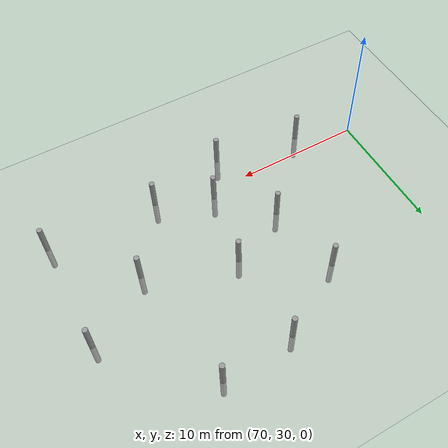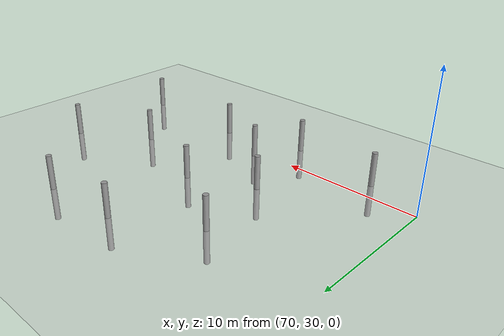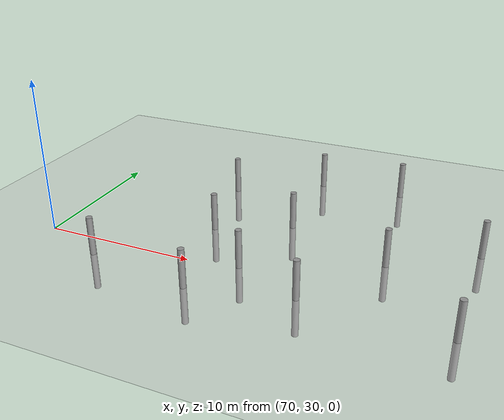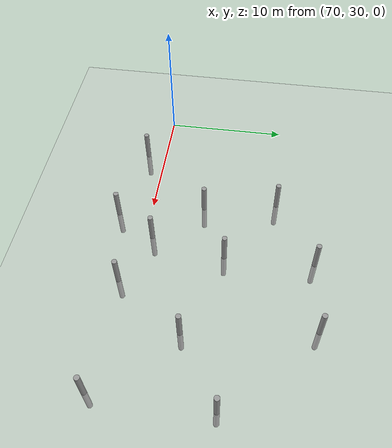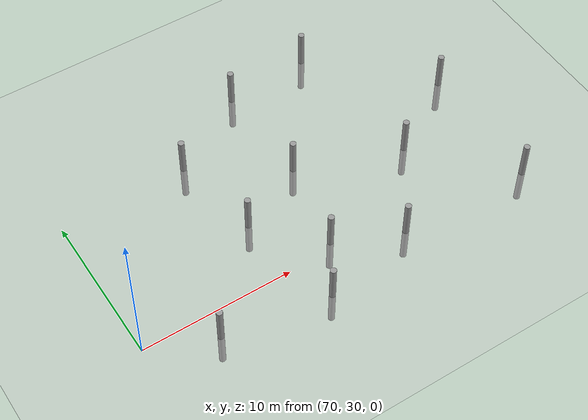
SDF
<sdf version="1.6">
 <world name="default">
  <model name="ground_plane">
   <static>1</static>
   <link name="link">
    <collision name="collision">
     <geometry><plane><normal>0 0 1</normal><size>100 100</size></plane></geometry>
     <surface><friction><ode><mu>100</mu><mu2>50</mu2></ode></friction></surface>
    </collision>
    <visual name="visual">
     <cast_shadows>0</cast_shadows>
     <geometry><plane><normal>0 0 1</normal><size>100 100</size></plane></geometry>
     <material>
      <script><uri>file://media/materials/scripts/gazebo.material</uri><name>Gazebo/Grey</name></script>
     </material>
    </visual>
   </link>
  </model>
  <model name="empty_pillars_3">
   <link name="link">
    <inertial>
     <mass>1</mass>
     <inertia><ixx>0.145833</ixx><ixy>0</ixy><ixz>0</ixz><iyy>0.145833</iyy><iyz>0</iyz><izz>0.125</izz></inertia>
    </inertial>
    <visual name="visual">
     <geometry><cylinder><radius>0.2</radius><length>5</length></cylinder></geometry>
     <material>
      <script><name>Gazebo/Grey</name><uri>file://media/materials/scripts/gazebo.material</uri></script>
      <shader type="vertex"><normal_map>__default__</normal_map></shader>
      <ambient>0.3 0.3 0.3 1</ambient>
      <diffuse>0.7 0.7 0.7 1</diffuse>
      <specular>0.01 0.01 0.01 1</specular>
      <emissive>0 0 0 1</emissive>
     </material>
    </visual>
    <collision name="collision">
     <geometry><cylinder><radius>0.05</radius><length>5</length></cylinder></geometry>
     <surface>
      <friction>
       <ode><mu>1</mu><mu2>1</mu2><fdir1>0 0 0</fdir1><slip1>0</slip1><slip2>0</slip2></ode>
       <torsional>
        <coefficient>1</coefficient>
        <patch_radius>0</patch_radius>
        <surface_radius>0</surface_radius>
        <use_patch_radius>1</use_patch_radius>
        <ode><slip>0</slip></ode>
       </torsional>
      </friction>
      <bounce><restitution_coefficient>0</restitution_coefficient><threshold>1e+06</threshold></bounce>
      <contact>
       <collide_without_contact>0</collide_without_contact>
       <collide_without_contact_bitmask>1</collide_without_contact_bitmask>
       <collide_bitmask>1</collide_bitmask>
       <ode>
        <soft_cfm>0</soft_cfm>
        <soft_erp>0.2</soft_erp>
        <kp>1e+13</kp>
        <kd>1</kd>
        <max_vel>0.01</max_vel>
        <min_depth>0</min_depth>
       </ode>
       <bullet>
        <split_impulse>1</split_impulse>
        <split_impulse_penetration_threshold>-0.01</split_impulse_penetration_threshold>
        <soft_cfm>0</soft_cfm>
        <soft_erp>0.2</soft_erp>
        <kp>1e+13</kp>
        <kd>1</kd>
       </bullet>
      </contact>
     </surface>
    </collision>
   </link>
   <model name="empty_pillar_clone_1">
    <link name="link">
     <inertial>
      <mass>1</mass>
      <inertia><ixx>0.145833</ixx><ixy>0</ixy><ixz>0</ixz><iyy>0.145833</iyy><iyz>0</iyz><izz>0.125</izz></inertia>
     </inertial>
     <visual name="visual">
      <geometry><cylinder><radius>0.2</radius><length>5</length></cylinder></geometry>
      <material>
       <script><name>Gazebo/Grey</name><uri>file://media/materials/scripts/gazebo.material</uri></script>
       <shader type="vertex"><normal_map>__default__</normal_map></shader>
       <ambient>0.3 0.3 0.3 1</ambient>
       <diffuse>0.7 0.7 0.7 1</diffuse>
       <specular>0.01 0.01 0.01 1</specular>
       <emissive>0 0 0 1</emissive>
      </material>
     </visual>
     <collision name="collision">
      <geometry><cylinder><radius>0.05</radius><length>5</length></cylinder></geometry>
      <surface>
       <friction>
        <ode><mu>1</mu><mu2>1</mu2><fdir1>0 0 0</fdir1><slip1>0</slip1><slip2>0</slip2></ode>
        <torsional>
         <coefficient>1</coefficient>
         <patch_radius>0</patch_radius>
         <surface_radius>0</surface_radius>
         <use_patch_radius>1</use_patch_radius>
         <ode><slip>0</slip></ode>
        </torsional>
       </friction>
       <bounce><restitution_coefficient>0</restitution_coefficient><threshold>1e+06</threshold></bounce>
       <contact>
        <collide_without_contact>0</collide_without_contact>
        <collide_without_contact_bitmask>1</collide_without_contact_bitmask>
        <collide_bitmask>1</collide_bitmask>
        <ode>
         <soft_cfm>0</soft_cfm>
         <soft_erp>0.2</soft_erp>
         <kp>1e+13</kp>
         <kd>1</kd>
         <max_vel>0.01</max_vel>
         <min_depth>0</min_depth>
        </ode>
        <bullet>
         <split_impulse>1</split_impulse>
         <split_impulse_penetration_threshold>-0.01</split_impulse_penetration_threshold>
         <soft_cfm>0</soft_cfm>
         <soft_erp>0.2</soft_erp>
         <kp>1e+13</kp>
         <kd>1</kd>
        </bullet>
       </contact>
      </surface>
     </collision>
    </link>
    <static>0</static>
    <pose>8.92248 2.14838 0 0 -0 0</pose>
   </model>
   <model name="empty_pillar_clone_2">
    <link name="link">
     <inertial>
      <mass>1</mass>
      <inertia><ixx>0.145833</ixx><ixy>0</ixy><ixz>0</ixz><iyy>0.145833</iyy><iyz>0</iyz><izz>0.125</izz></inertia>
     </inertial>
     <visual name="visual">
      <geometry><cylinder><radius>0.2</radius><length>5</length></cylinder></geometry>
      <material>
       <script><name>Gazebo/Grey</name><uri>file://media/materials/scripts/gazebo.material</uri></script>
       <shader type="vertex"><normal_map>__default__</normal_map></shader>
       <ambient>0.3 0.3 0.3 1</ambient>
       <diffuse>0.7 0.7 0.7 1</diffuse>
       <specular>0.01 0.01 0.01 1</specular>
       <emissive>0 0 0 1</emissive>
      </material>
     </visual>
     <collision name="collision">
      <geometry><cylinder><radius>0.05</radius><length>5</length></cylinder></geometry>
      <surface>
       <friction>
        <ode><mu>1</mu><mu2>1</mu2><fdir1>0 0 0</fdir1><slip1>0</slip1><slip2>0</slip2></ode>
        <torsional>
         <coefficient>1</coefficient>
         <patch_radius>0</patch_radius>
         <surface_radius>0</surface_radius>
         <use_patch_radius>1</use_patch_radius>
         <ode><slip>0</slip></ode>
        </torsional>
       </friction>
       <bounce><restitution_coefficient>0</restitution_coefficient><threshold>1e+06</threshold></bounce>
       <contact>
        <collide_without_contact>0</collide_without_contact>
        <collide_without_contact_bitmask>1</collide_without_contact_bitmask>
        <collide_bitmask>1</collide_bitmask>
        <ode>
         <soft_cfm>0</soft_cfm>
         <soft_erp>0.2</soft_erp>
         <kp>1e+13</kp>
         <kd>1</kd>
         <max_vel>0.01</max_vel>
         <min_depth>0</min_depth>
        </ode>
        <bullet>
         <split_impulse>1</split_impulse>
         <split_impulse_penetration_threshold>-0.01</split_impulse_penetration_threshold>
         <soft_cfm>0</soft_cfm>
         <soft_erp>0.2</soft_erp>
         <kp>1e+13</kp>
         <kd>1</kd>
        </bullet>
       </contact>
      </surface>
     </collision>
    </link>
    <static>0</static>
    <pose>6.92427 -1.06221 0 0 -0 0</pose>
   </model>
   <model name="empty_pillar_clone_27">
    <link name="link">
     <inertial>
      <mass>1</mass>
      <inertia><ixx>0.145833</ixx><ixy>0</ixy><ixz>0</ixz><iyy>0.145833</iyy><iyz>0</iyz><izz>0.125</izz></inertia>
     </inertial>
     <visual name="visual">
      <geometry><cylinder><radius>0.2</radius><length>5</length></cylinder></geometry>
      <material>
       <script><name>Gazebo/Grey</name><uri>file://media/materials/scripts/gazebo.material</uri></script>
       <shader type="vertex"><normal_map>__default__</normal_map></shader>
       <ambient>0.3 0.3 0.3 1</ambient>
       <diffuse>0.7 0.7 0.7 1</diffuse>
       <specular>0.01 0.01 0.01 1</specular>
       <emissive>0 0 0 1</emissive>
      </material>
     </visual>
     <collision name="collision">
      <geometry><cylinder><radius>0.05</radius><length>5</length></cylinder></geometry>
      <surface>
       <friction>
        <ode><mu>1</mu><mu2>1</mu2><fdir1>0 0 0</fdir1><slip1>0</slip1><slip2>0</slip2></ode>
        <torsional>
         <coefficient>1</coefficient>
         <patch_radius>0</patch_radius>
         <surface_radius>0</surface_radius>
         <use_patch_radius>1</use_patch_radius>
         <ode><slip>0</slip></ode>
        </torsional>
       </friction>
       <bounce><restitution_coefficient>0</restitution_coefficient><threshold>1e+06</threshold></bounce>
       <contact>
        <collide_without_contact>0</collide_without_contact>
        <collide_without_contact_bitmask>1</collide_without_contact_bitmask>
        <collide_bitmask>1</collide_bitmask>
        <ode>
         <soft_cfm>0</soft_cfm>
         <soft_erp>0.2</soft_erp>
         <kp>1e+13</kp>
         <kd>1</kd>
         <max_vel>0.01</max_vel>
         <min_depth>0</min_depth>
        </ode>
        <bullet>
         <split_impulse>1</split_impulse>
         <split_impulse_penetration_threshold>-0.01</split_impulse_penetration_threshold>
         <soft_cfm>0</soft_cfm>
         <soft_erp>0.2</soft_erp>
         <kp>1e+13</kp>
         <kd>1</kd>
        </bullet>
       </contact>
      </surface>
     </collision>
    </link>
    <static>0</static>
    <pose>4.32163 11.823 0 0 -0 0</pose>
   </model>
   <model name="empty_pillar_clone_28">
    <link name="link">
     <inertial>
      <mass>1</mass>
      <inertia><ixx>0.145833</ixx><ixy>0</ixy><ixz>0</ixz><iyy>0.145833</iyy><iyz>0</iyz><izz>0.125</izz></inertia>
     </inertial>
     <visual name="visual">
      <geometry><cylinder><radius>0.2</radius><length>5</length></cylinder></geometry>
      <material>
       <script><name>Gazebo/Grey</name><uri>file://media/materials/scripts/gazebo.material</uri></script>
       <shader type="vertex"><normal_map>__default__</normal_map></shader>
       <ambient>0.3 0.3 0.3 1</ambient>
       <diffuse>0.7 0.7 0.7 1</diffuse>
       <specular>0.01 0.01 0.01 1</specular>
       <emissive>0 0 0 1</emissive>
      </material>
     </visual>
     <collision name="collision">
      <geometry><cylinder><radius>0.05</radius><length>5</length></cylinder></geometry>
      <surface>
       <friction>
        <ode><mu>1</mu><mu2>1</mu2><fdir1>0 0 0</fdir1><slip1>0</slip1><slip2>0</slip2></ode>
        <torsional>
         <coefficient>1</coefficient>
         <patch_radius>0</patch_radius>
         <surface_radius>0</surface_radius>
         <use_patch_radius>1</use_patch_radius>
         <ode><slip>0</slip></ode>
        </torsional>
       </friction>
       <bounce><restitution_coefficient>0</restitution_coefficient><threshold>1e+06</threshold></bounce>
       <contact>
        <collide_without_contact>0</collide_without_contact>
        <collide_without_contact_bitmask>1</collide_without_contact_bitmask>
        <collide_bitmask>1</collide_bitmask>
        <ode>
         <soft_cfm>0</soft_cfm>
         <soft_erp>0.2</soft_erp>
         <kp>1e+13</kp>
         <kd>1</kd>
         <max_vel>0.01</max_vel>
         <min_depth>0</min_depth>
        </ode>
        <bullet>
         <split_impulse>1</split_impulse>
         <split_impulse_penetration_threshold>-0.01</split_impulse_penetration_threshold>
         <soft_cfm>0</soft_cfm>
         <soft_erp>0.2</soft_erp>
         <kp>1e+13</kp>
         <kd>1</kd>
        </bullet>
       </contact>
      </surface>
     </collision>
    </link>
    <static>0</static>
    <pose>15.5447 15.5867 0 0 -0 0</pose>
   </model>
   <model name="empty_pillar_clone_29">
    <link name="link">
     <inertial>
      <mass>1</mass>
      <inertia><ixx>0.145833</ixx><ixy>0</ixy><ixz>0</ixz><iyy>0.145833</iyy><iyz>0</iyz><izz>0.125</izz></inertia>
     </inertial>
     <visual name="visual">
      <geometry><cylinder><radius>0.2</radius><length>5</length></cylinder></geometry>
      <material>
       <script><name>Gazebo/Grey</name><uri>file://media/materials/scripts/gazebo.material</uri></script>
       <shader type="vertex"><normal_map>__default__</normal_map></shader>
       <ambient>0.3 0.3 0.3 1</ambient>
       <diffuse>0.7 0.7 0.7 1</diffuse>
       <specular>0.01 0.01 0.01 1</specular>
       <emissive>0 0 0 1</emissive>
      </material>
     </visual>
     <collision name="collision">
      <geometry><cylinder><radius>0.05</radius><length>5</length></cylinder></geometry>
      <surface>
       <friction>
        <ode><mu>1</mu><mu2>1</mu2><fdir1>0 0 0</fdir1><slip1>0</slip1><slip2>0</slip2></ode>
        <torsional>
         <coefficient>1</coefficient>
         <patch_radius>0</patch_radius>
         <surface_radius>0</surface_radius>
         <use_patch_radius>1</use_patch_radius>
         <ode><slip>0</slip></ode>
        </torsional>
       </friction>
       <bounce><restitution_coefficient>0</restitution_coefficient><threshold>1e+06</threshold></bounce>
       <contact>
        <collide_without_contact>0</collide_without_contact>
        <collide_without_contact_bitmask>1</collide_without_contact_bitmask>
        <collide_bitmask>1</collide_bitmask>
        <ode>
         <soft_cfm>0</soft_cfm>
         <soft_erp>0.2</soft_erp>
         <kp>1e+13</kp>
         <kd>1</kd>
         <max_vel>0.01</max_vel>
         <min_depth>0</min_depth>
        </ode>
        <bullet>
         <split_impulse>1</split_impulse>
         <split_impulse_penetration_threshold>-0.01</split_impulse_penetration_threshold>
         <soft_cfm>0</soft_cfm>
         <soft_erp>0.2</soft_erp>
         <kp>1e+13</kp>
         <kd>1</kd>
        </bullet>
       </contact>
      </surface>
     </collision>
    </link>
    <static>0</static>
    <pose>10.08 8.0876 0 0 -0 0</pose>
   </model>
   <model name="empty_pillar_clone_31">
    <link name="link">
     <inertial>
      <mass>1</mass>
      <inertia><ixx>0.145833</ixx><ixy>0</ixy><ixz>0</ixz><iyy>0.145833</iyy><iyz>0</iyz><izz>0.125</izz></inertia>
     </inertial>
     <visual name="visual">
      <geometry><cylinder><radius>0.2</radius><length>5</length></cylinder></geometry>
      <material>
       <script><name>Gazebo/Grey</name><uri>file://media/materials/scripts/gazebo.material</uri></script>
       <shader type="vertex"><normal_map>__default__</normal_map></shader>
       <ambient>0.3 0.3 0.3 1</ambient>
       <diffuse>0.7 0.7 0.7 1</diffuse>
       <specular>0.01 0.01 0.01 1</specular>
       <emissive>0 0 0 1</emissive>
      </material>
     </visual>
     <collision name="collision">
      <geometry><cylinder><radius>0.05</radius><length>5</length></cylinder></geometry>
      <surface>
       <friction>
        <ode><mu>1</mu><mu2>1</mu2><fdir1>0 0 0</fdir1><slip1>0</slip1><slip2>0</slip2></ode>
        <torsional>
         <coefficient>1</coefficient>
         <patch_radius>0</patch_radius>
         <surface_radius>0</surface_radius>
         <use_patch_radius>1</use_patch_radius>
         <ode><slip>0</slip></ode>
        </torsional>
       </friction>
       <bounce><restitution_coefficient>0</restitution_coefficient><threshold>1e+06</threshold></bounce>
       <contact>
        <collide_without_contact>0</collide_without_contact>
        <collide_without_contact_bitmask>1</collide_without_contact_bitmask>
        <collide_bitmask>1</collide_bitmask>
        <ode>
         <soft_cfm>0</soft_cfm>
         <soft_erp>0.2</soft_erp>
         <kp>1e+13</kp>
         <kd>1</kd>
         <max_vel>0.01</max_vel>
         <min_depth>0</min_depth>
        </ode>
        <bullet>
         <split_impulse>1</split_impulse>
         <split_impulse_penetration_threshold>-0.01</split_impulse_penetration_threshold>
         <soft_cfm>0</soft_cfm>
         <soft_erp>0.2</soft_erp>
         <kp>1e+13</kp>
         <kd>1</kd>
        </bullet>
       </contact>
      </surface>
     </collision>
    </link>
    <static>0</static>
    <pose>22.0722 9.04182 0 0 -0 0</pose>
   </model>
   <model name="empty_pillar_clone_32">
    <link name="link">
     <inertial>
      <mass>1</mass>
      <inertia><ixx>0.145833</ixx><ixy>0</ixy><ixz>0</ixz><iyy>0.145833</iyy><iyz>0</iyz><izz>0.125</izz></inertia>
     </inertial>
     <visual name="visual">
      <geometry><cylinder><radius>0.2</radius><length>5</length></cylinder></geometry>
      <material>
       <script><name>Gazebo/Grey</name><uri>file://media/materials/scripts/gazebo.material</uri></script>
       <shader type="vertex"><normal_map>__default__</normal_map></shader>
       <ambient>0.3 0.3 0.3 1</ambient>
       <diffuse>0.7 0.7 0.7 1</diffuse>
       <specular>0.01 0.01 0.01 1</specular>
       <emissive>0 0 0 1</emissive>
      </material>
     </visual>
     <collision name="collision">
      <geometry><cylinder><radius>0.05</radius><length>5</length></cylinder></geometry>
      <surface>
       <friction>
        <ode><mu>1</mu><mu2>1</mu2><fdir1>0 0 0</fdir1><slip1>0</slip1><slip2>0</slip2></ode>
        <torsional>
         <coefficient>1</coefficient>
         <patch_radius>0</patch_radius>
         <surface_radius>0</surface_radius>
         <use_patch_radius>1</use_patch_radius>
         <ode><slip>0</slip></ode>
        </torsional>
       </friction>
       <bounce><restitution_coefficient>0</restitution_coefficient><threshold>1e+06</threshold></bounce>
       <contact>
        <collide_without_contact>0</collide_without_contact>
        <collide_without_contact_bitmask>1</collide_without_contact_bitmask>
        <collide_bitmask>1</collide_bitmask>
        <ode>
         <soft_cfm>0</soft_cfm>
         <soft_erp>0.2</soft_erp>
         <kp>1e+13</kp>
         <kd>1</kd>
         <max_vel>0.01</max_vel>
         <min_depth>0</min_depth>
        </ode>
        <bullet>
         <split_impulse>1</split_impulse>
         <split_impulse_penetration_threshold>-0.01</split_impulse_penetration_threshold>
         <soft_cfm>0</soft_cfm>
         <soft_erp>0.2</soft_erp>
         <kp>1e+13</kp>
         <kd>1</kd>
        </bullet>
       </contact>
      </surface>
     </collision>
    </link>
    <static>0</static>
    <pose>21.9854 0.15966 0 0 -0 0</pose>
   </model>
   <model name="empty_pillar_clone_49">
    <link name="link">
     <inertial>
      <mass>1</mass>
      <inertia><ixx>0.145833</ixx><ixy>0</ixy><ixz>0</ixz><iyy>0.145833</iyy><iyz>0</iyz><izz>0.125</izz></inertia>
     </inertial>
     <visual name="visual">
      <geometry><cylinder><radius>0.2</radius><length>5</length></cylinder></geometry>
      <material>
       <script><name>Gazebo/Grey</name><uri>file://media/materials/scripts/gazebo.material</uri></script>
       <shader type="vertex"><normal_map>__default__</normal_map></shader>
       <ambient>0.3 0.3 0.3 1</ambient>
       <diffuse>0.7 0.7 0.7 1</diffuse>
       <specular>0.01 0.01 0.01 1</specular>
       <emissive>0 0 0 1</emissive>
      </material>
     </visual>
     <collision name="collision">
      <geometry><cylinder><radius>0.05</radius><length>5</length></cylinder></geometry>
      <surface>
       <friction>
        <ode><mu>1</mu><mu2>1</mu2><fdir1>0 0 0</fdir1><slip1>0</slip1><slip2>0</slip2></ode>
        <torsional>
         <coefficient>1</coefficient>
         <patch_radius>0</patch_radius>
         <surface_radius>0</surface_radius>
         <use_patch_radius>1</use_patch_radius>
         <ode><slip>0</slip></ode>
        </torsional>
       </friction>
       <bounce><restitution_coefficient>0</restitution_coefficient><threshold>1e+06</threshold></bounce>
       <contact>
        <collide_without_contact>0</collide_without_contact>
        <collide_without_contact_bitmask>1</collide_without_contact_bitmask>
        <collide_bitmask>1</collide_bitmask>
        <ode>
         <soft_cfm>0</soft_cfm>
         <soft_erp>0.2</soft_erp>
         <kp>1e+13</kp>
         <kd>1</kd>
         <max_vel>0.01</max_vel>
         <min_depth>0</min_depth>
        </ode>
        <bullet>
         <split_impulse>1</split_impulse>
         <split_impulse_penetration_threshold>-0.01</split_impulse_penetration_threshold>
         <soft_cfm>0</soft_cfm>
         <soft_erp>0.2</soft_erp>
         <kp>1e+13</kp>
         <kd>1</kd>
        </bullet>
       </contact>
      </surface>
     </collision>
    </link>
    <static>0</static>
    <pose>9.84768 15.1425 0 0 -0 0</pose>
   </model>
   <model name="empty_pillar_clone_55">
    <link name="link">
     <inertial>
      <mass>1</mass>
      <inertia><ixx>0.145833</ixx><ixy>0</ixy><ixz>0</ixz><iyy>0.145833</iyy><iyz>0</iyz><izz>0.125</izz></inertia>
     </inertial>
     <visual name="visual">
      <geometry><cylinder><radius>0.2</radius><length>5</length></cylinder></geometry>
      <material>
       <script><name>Gazebo/Grey</name><uri>file://media/materials/scripts/gazebo.material</uri></script>
       <shader type="vertex"><normal_map>__default__</normal_map></shader>
       <ambient>0.3 0.3 0.3 1</ambient>
       <diffuse>0.7 0.7 0.7 1</diffuse>
       <specular>0.01 0.01 0.01 1</specular>
       <emissive>0 0 0 1</emissive>
      </material>
     </visual>
     <collision name="collision">
      <geometry><cylinder><radius>0.05</radius><length>5</length></cylinder></geometry>
      <surface>
       <friction>
        <ode><mu>1</mu><mu2>1</mu2><fdir1>0 0 0</fdir1><slip1>0</slip1><slip2>0</slip2></ode>
        <torsional>
         <coefficient>1</coefficient>
         <patch_radius>0</patch_radius>
         <surface_radius>0</surface_radius>
         <use_patch_radius>1</use_patch_radius>
         <ode><slip>0</slip></ode>
        </torsional>
       </friction>
       <bounce><restitution_coefficient>0</restitution_coefficient><threshold>1e+06</threshold></bounce>
       <contact>
        <collide_without_contact>0</collide_without_contact>
        <collide_without_contact_bitmask>1</collide_without_contact_bitmask>
        <collide_bitmask>1</collide_bitmask>
        <ode>
         <soft_cfm>0</soft_cfm>
         <soft_erp>0.2</soft_erp>
         <kp>1e+13</kp>
         <kd>1</kd>
         <max_vel>0.01</max_vel>
         <min_depth>0</min_depth>
        </ode>
        <bullet>
         <split_impulse>1</split_impulse>
         <split_impulse_penetration_threshold>-0.01</split_impulse_penetration_threshold>
         <soft_cfm>0</soft_cfm>
         <soft_erp>0.2</soft_erp>
         <kp>1e+13</kp>
         <kd>1</kd>
        </bullet>
       </contact>
      </surface>
     </collision>
    </link>
    <static>0</static>
    <pose>13.2247 0.382706 0 0 -0 0</pose>
   </model>
   <model name="empty_pillar_clone_57">
    <link name="link">
     <inertial>
      <mass>1</mass>
      <inertia><ixx>0.145833</ixx><ixy>0</ixy><ixz>0</ixz><iyy>0.145833</iyy><iyz>0</iyz><izz>0.125</izz></inertia>
     </inertial>
     <visual name="visual">
      <geometry><cylinder><radius>0.2</radius><length>5</length></cylinder></geometry>
      <material>
       <script><name>Gazebo/Grey</name><uri>file://media/materials/scripts/gazebo.material</uri></script>
       <shader type="vertex"><normal_map>__default__</normal_map></shader>
       <ambient>0.3 0.3 0.3 1</ambient>
       <diffuse>0.7 0.7 0.7 1</diffuse>
       <specular>0.01 0.01 0.01 1</specular>
       <emissive>0 0 0 1</emissive>
      </material>
     </visual>
     <collision name="collision">
      <geometry><cylinder><radius>0.05</radius><length>5</length></cylinder></geometry>
      <surface>
       <friction>
        <ode><mu>1</mu><mu2>1</mu2><fdir1>0 0 0</fdir1><slip1>0</slip1><slip2>0</slip2></ode>
        <torsional>
         <coefficient>1</coefficient>
         <patch_radius>0</patch_radius>
         <surface_radius>0</surface_radius>
         <use_patch_radius>1</use_patch_radius>
         <ode><slip>0</slip></ode>
        </torsional>
       </friction>
       <bounce><restitution_coefficient>0</restitution_coefficient><threshold>1e+06</threshold></bounce>
       <contact>
        <collide_without_contact>0</collide_without_contact>
        <collide_without_contact_bitmask>1</collide_without_contact_bitmask>
        <collide_bitmask>1</collide_bitmask>
        <ode>
         <soft_cfm>0</soft_cfm>
         <soft_erp>0.2</soft_erp>
         <kp>1e+13</kp>
         <kd>1</kd>
         <max_vel>0.01</max_vel>
         <min_depth>0</min_depth>
        </ode>
        <bullet>
         <split_impulse>1</split_impulse>
         <split_impulse_penetration_threshold>-0.01</split_impulse_penetration_threshold>
         <soft_cfm>0</soft_cfm>
         <soft_erp>0.2</soft_erp>
         <kp>1e+13</kp>
         <kd>1</kd>
        </bullet>
       </contact>
      </surface>
     </collision>
    </link>
    <static>0</static>
    <pose>5.4355 5.86468 0 0 -0 0</pose>
   </model>
   <model name="empty_pillar_clone_7">
    <link name="link">
     <inertial>
      <mass>1</mass>
      <inertia><ixx>0.145833</ixx><ixy>0</ixy><ixz>0</ixz><iyy>0.145833</iyy><iyz>0</iyz><izz>0.125</izz></inertia>
     </inertial>
     <visual name="visual">
      <geometry><cylinder><radius>0.2</radius><length>5</length></cylinder></geometry>
      <material>
       <script><name>Gazebo/Grey</name><uri>file://media/materials/scripts/gazebo.material</uri></script>
       <shader type="vertex"><normal_map>__default__</normal_map></shader>
       <ambient>0.3 0.3 0.3 1</ambient>
       <diffuse>0.7 0.7 0.7 1</diffuse>
       <specular>0.01 0.01 0.01 1</specular>
       <emissive>0 0 0 1</emissive>
      </material>
     </visual>
     <collision name="collision">
      <geometry><cylinder><radius>0.05</radius><length>5</length></cylinder></geometry>
      <surface>
       <friction>
        <ode><mu>1</mu><mu2>1</mu2><fdir1>0 0 0</fdir1><slip1>0</slip1><slip2>0</slip2></ode>
        <torsional>
         <coefficient>1</coefficient>
         <patch_radius>0</patch_radius>
         <surface_radius>0</surface_radius>
         <use_patch_radius>1</use_patch_radius>
         <ode><slip>0</slip></ode>
        </torsional>
       </friction>
       <bounce><restitution_coefficient>0</restitution_coefficient><threshold>1e+06</threshold></bounce>
       <contact>
        <collide_without_contact>0</collide_without_contact>
        <collide_without_contact_bitmask>1</collide_without_contact_bitmask>
        <collide_bitmask>1</collide_bitmask>
        <ode>
         <soft_cfm>0</soft_cfm>
         <soft_erp>0.2</soft_erp>
         <kp>1e+13</kp>
         <kd>1</kd>
         <max_vel>0.01</max_vel>
         <min_depth>0</min_depth>
        </ode>
        <bullet>
         <split_impulse>1</split_impulse>
         <split_impulse_penetration_threshold>-0.01</split_impulse_penetration_threshold>
         <soft_cfm>0</soft_cfm>
         <soft_erp>0.2</soft_erp>
         <kp>1e+13</kp>
         <kd>1</kd>
        </bullet>
       </contact>
      </surface>
     </collision>
    </link>
    <static>0</static>
    <pose>16.9242 5.74519 0 0 -0 0</pose>
   </model>
   <static>0</static>
   <pose>74.2615 28.3982 0 0 -0 0</pose>
  </model>
 </world>
</sdf>
